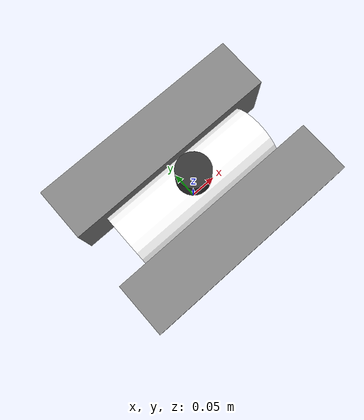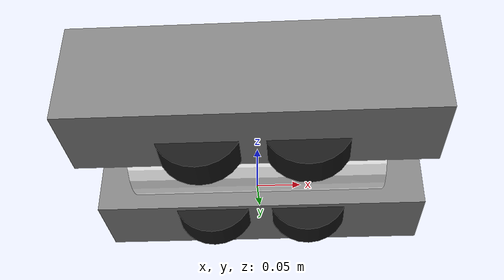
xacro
<?xml version="1.0"?>
<robot xmlns:xacro="http://www.ros.org/wiki/xacro" name="storm_robot">

  <!-- Proprietà fisiche STORM -->
  <xacro:property name="tu_mass"     value="2.81"/>
  <xacro:property name="wu_mass"     value="0.76"/>
  <xacro:property name="vtu_mass"    value="0.73"/>
  <xacro:property name="base_mass"   value="1.26"/>
  <xacro:property name="robot_length" value="0.410"/>
  <xacro:property name="robot_width"  value="0.305"/>
  <xacro:property name="robot_height" value="0.120"/>

  <link name="base_footprint"/>

  <joint name="base_joint" type="fixed">
    <parent link="base_footprint"/>
    <child link="base_link"/>
    <origin xyz="0 0 0.06" rpy="0 0 0"/>
  </joint>

  <link name="base_link">
    <visual>
      <origin rpy="0 1.5708 0" xyz="0 0 0"/>
      <geometry><cylinder radius="0.06" length="0.30"/></geometry>
      <material name="white"><color rgba="1 1 1 1"/></material>
    </visual>
    <collision>
      <origin rpy="0 1.5708 0" xyz="0 0 0"/>
      <geometry><cylinder radius="0.06" length="0.30"/></geometry>
    </collision>
    <inertial>
      <mass value="${base_mass}"/>
      <inertia ixx="0.01" iyy="0.01" izz="0.01" ixy="0" ixz="0" iyz="0"/>
    </inertial>
  </link>

  <!-- Macro per Unità Cingolate (Tracked Units) -->
  <xacro:macro name="tracked_unit" params="prefix y">
    <link name="${prefix}_tracked_unit">
      <visual>
        <geometry><box size="${robot_length} 0.10 ${robot_height}"/></geometry>
        <material name="grey"><color rgba="0.5 0.5 0.5 1"/></material>
      </visual>
      <inertial>
        <mass value="${tu_mass}"/>
        <inertia ixx="0.005" iyy="0.005" izz="0.005" ixy="0" ixz="0" iyz="0"/>
      </inertial>
    </link>
    <joint name="${prefix}_tu_joint" type="fixed">
      <parent link="base_link"/>
      <child link="${prefix}_tracked_unit"/>
      <origin xyz="0 ${y} 0"/>
    </joint>
  </xacro:macro>

  <xacro:tracked_unit prefix="left"  y="0.1025"/>
  <xacro:tracked_unit prefix="right" y="-0.1025"/>

  <!-- Meccanismo di Traslazione Verticale (VTM) -->
  <joint name="vtm_joint" type="prismatic">
    <parent link="base_link"/>
    <child link="vtu_link"/>
    <axis xyz="0 0 -1"/>
    <limit lower="0" upper="0.05" effort="1000" velocity="0.1"/>
  </joint>

  <link name="vtu_link">
    <visual>
      <geometry><box size="0.15 0.15 0.04"/></geometry>
      <material name="black"><color rgba="0.1 0.1 0.1 1"/></material>
    </visual>
    <collision>
      <geometry><box size="0.15 0.15 0.04"/></geometry>
    </collision>
    <inertial>
      <mass value="${vtu_mass}"/>
      <inertia ixx="0.001" iyy="0.001" izz="0.001" ixy="0" ixz="0" iyz="0"/>
    </inertial>
  </link>

  <!-- Macro per Unità a Ruote (Wheeled Units) -->
  <xacro:macro name="wheel" params="prefix x y">
    <link name="${prefix}_wheel">
      <visual>
        <origin rpy="1.5708 0 0"/>
        <geometry><cylinder radius="0.05" length="0.04"/></geometry>
        <material name="black"/>
      </visual>
      <collision>

        <origin rpy="1.5708 0 0"/>

        <geometry><cylinder radius="0.05" length="0.04"/></geometry>

      </collision>
      <inertial>
        <mass value="${wu_mass}"/>
        <inertia ixx="0.001" iyy="0.001" izz="0.001" ixy="0" ixz="0" iyz="0"/>
      </inertial>
    </link>
    <joint name="${prefix}_wheel_joint" type="continuous">
      <parent link="vtu_link"/>
      <child link="${prefix}_wheel"/>
      <origin xyz="${x} ${y} -0.04"/>
      <axis xyz="0 1 0"/>
    </joint>
  <gazebo reference="${prefix}_wheel">
      <mu1>1.0</mu1>
      <mu2>1.0</mu2>
    </gazebo>
  </xacro:macro>

  <xacro:wheel prefix="fl" x="0.06"  y="0.08"/>
  <xacro:wheel prefix="fr" x="0.06"  y="-0.08"/>
  <xacro:wheel prefix="rl" x="-0.06" y="0.08"/>
  <xacro:wheel prefix="rr" x="-0.06" y="-0.08"/>

  <!-- LIDAR Hokuyo -->
  <joint name="lidar_joint" type="fixed">
    <parent link="base_link"/>
    <child link="lidar_link"/>
    <origin xyz="0 0 0.10" rpy="0 0 0"/>
  </joint>

  <gazebo reference="lidar_joint">
    <preserveFixedJoint>true</preserveFixedJoint>
  </gazebo>

  <link name="lidar_link">
    <visual>
      <geometry><cylinder radius="0.03" length="0.05"/></geometry>
      <material name="dark"><color rgba="0.2 0.2 0.2 1"/></material>
    </visual>
    <collision>
      <geometry><cylinder radius="0.03" length="0.05"/></geometry>
    </collision>
    <inertial>
      <mass value="0.1"/>
      <inertia ixx="0.001" iyy="0.001" izz="0.001" ixy="0" ixz="0" iyz="0"/>
    </inertial>
  </link>

  <gazebo reference="lidar_link">
    <sensor type="lidar" name="hokuyo_sensor">
      <topic>/model/storm/scan</topic>
      <ignition_frame_id>lidar_link</ignition_frame_id>
      <update_rate>10</update_rate>
      <ray>
        <scan>
          <horizontal>
            <samples>512</samples>
            <min_angle>-2.356</min_angle>
            <max_angle>2.356</max_angle>
          </horizontal>
        </scan>
        <range>
          <min>0.15</min>
          <max>5.00</max>
        </range>
      </ray>
      <always_on>1</always_on>
      <visualize>true</visualize>
    </sensor>
  </gazebo>

  <!-- Plugin DiffDrive per la locomozione -->
  <gazebo>
    <plugin filename="libignition-gazebo-diff-drive-system.so" name="ignition::gazebo::systems::DiffDrive">
      <left_joint>fl_wheel_joint</left_joint>
      <left_joint>rl_wheel_joint</left_joint>
      <right_joint>fr_wheel_joint</right_joint>
      <right_joint>rr_wheel_joint</right_joint>
      <wheel_separation>0.16</wheel_separation>
      <wheel_radius>0.05</wheel_radius>
      <topic>/model/storm/cmd_vel</topic>
    </plugin>
  </gazebo>

  <gazebo>
    <plugin filename="libignition-gazebo-joint-state-publisher-system.so" name="ignition::gazebo::systems::JointStatePublisher">
      <topic>/model/storm/joint_states</topic>
      <joint_name>vtm_joint</joint_name>
      <joint_name>fl_wheel_joint</joint_name>
      <joint_name>fr_wheel_joint</joint_name>
      <joint_name>rl_wheel_joint</joint_name>
      <joint_name>rr_wheel_joint</joint_name>
    </plugin>
  </gazebo>

</robot>
